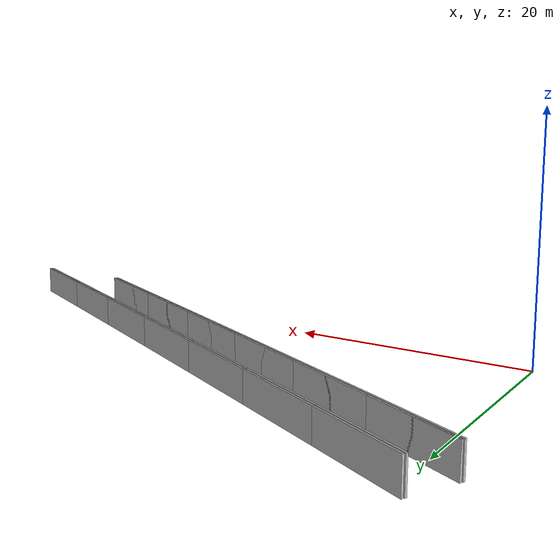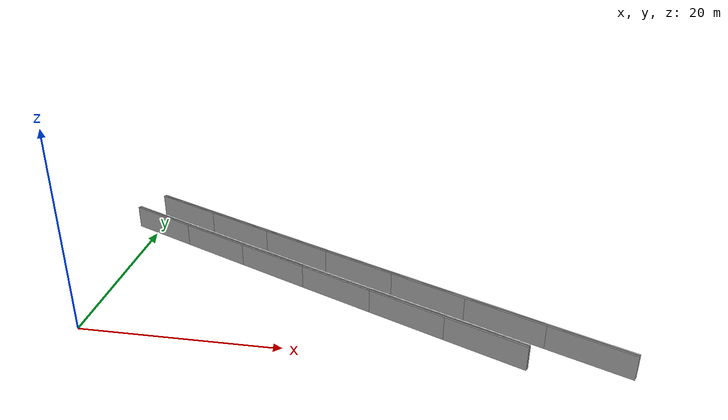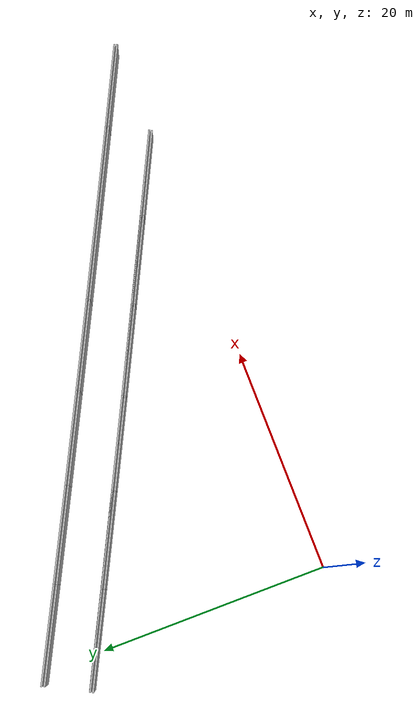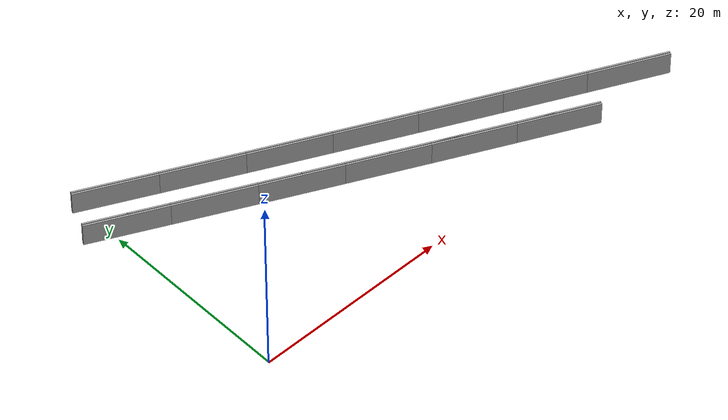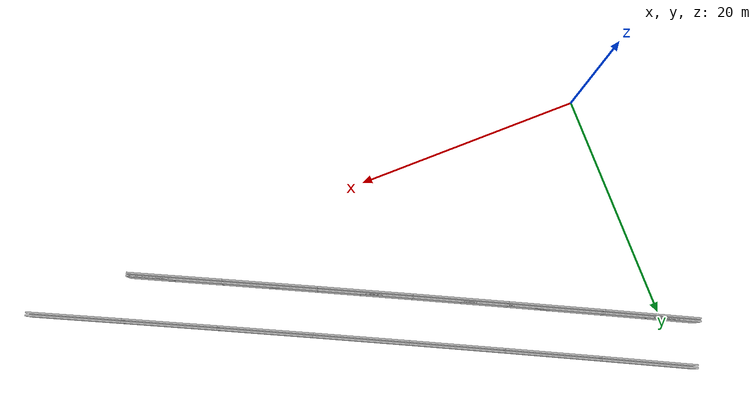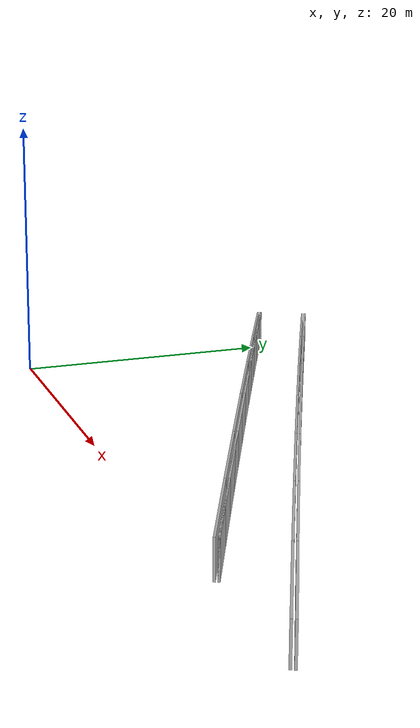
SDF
<?xml version="1.0" ?>
<sdf version="1.6">
  <model name="sps_0211">
    <pose frame="">0 0 0 0 -0 0</pose>
    <static>1</static>
    <self_collide>0</self_collide>
    <allow_auto_disable>0</allow_auto_disable>
    <link name="Wall4298">
      <kinematic>0</kinematic>
      <gravity>1</gravity>
      <self_collide>0</self_collide>
      <collision name="collision">
        <geometry>
          <box>
            <size>8.2516 0.15 2.5</size>
          </box>
        </geometry>
        <pose frame="">0 0 0 0 -0 0</pose>
      </collision>
      <visual name="visual">
        <geometry>
          <box>
            <size>8.2516 0.15 2.5</size>
          </box>
        </geometry>
        <pose frame="">0 0 0 0 -0 0</pose>
        <cast_shadows>1</cast_shadows>
        <transparency>0.0</transparency>
      </visual>
      <pose frame="">2.79708 23.5586 1.25 0 0 -0.453479</pose>
    </link>
    <link name="Wall4299">
      <kinematic>0</kinematic>
      <gravity>1</gravity>
      <self_collide>0</self_collide>
      <collision name="collision">
        <geometry>
          <box>
            <size>8.25152 0.15 2.5</size>
          </box>
        </geometry>
        <pose frame="">0 0 0 0 -0 0</pose>
      </collision>
      <visual name="visual">
        <geometry>
          <box>
            <size>8.25152 0.15 2.5</size>
          </box>
        </geometry>
        <pose frame="">0 0 0 0 -0 0</pose>
        <cast_shadows>1</cast_shadows>
        <transparency>0.0</transparency>
      </visual>
      <pose frame="">10.2189 19.9523 1.25 0 0 -0.45114</pose>
    </link>
    <link name="Wall4300">
      <kinematic>0</kinematic>
      <gravity>1</gravity>
      <self_collide>0</self_collide>
      <collision name="collision">
        <geometry>
          <box>
            <size>8.25185 0.15 2.5</size>
          </box>
        </geometry>
        <pose frame="">0 0 0 0 -0 0</pose>
      </collision>
      <visual name="visual">
        <geometry>
          <box>
            <size>8.25185 0.15 2.5</size>
          </box>
        </geometry>
        <pose frame="">0 0 0 0 -0 0</pose>
        <cast_shadows>1</cast_shadows>
        <transparency>0.0</transparency>
      </visual>
      <pose frame="">17.6493 16.3635 1.25 0 0 -0.448755</pose>
    </link>
    <link name="Wall4301">
      <kinematic>0</kinematic>
      <gravity>1</gravity>
      <self_collide>0</self_collide>
      <collision name="collision">
        <geometry>
          <box>
            <size>8.25142 0.15 2.5</size>
          </box>
        </geometry>
        <pose frame="">0 0 0 0 -0 0</pose>
      </collision>
      <visual name="visual">
        <geometry>
          <box>
            <size>8.25142 0.15 2.5</size>
          </box>
        </geometry>
        <pose frame="">0 0 0 0 -0 0</pose>
        <cast_shadows>1</cast_shadows>
        <transparency>0.0</transparency>
      </visual>
      <pose frame="">25.0881 12.7923 1.25 0 0 -0.446409</pose>
    </link>
    <link name="Wall4302">
      <kinematic>0</kinematic>
      <gravity>1</gravity>
      <self_collide>0</self_collide>
      <collision name="collision">
        <geometry>
          <box>
            <size>8.25148 0.15 2.5</size>
          </box>
        </geometry>
        <pose frame="">0 0 0 0 -0 0</pose>
      </collision>
      <visual name="visual">
        <geometry>
          <box>
            <size>8.25148 0.15 2.5</size>
          </box>
        </geometry>
        <pose frame="">0 0 0 0 -0 0</pose>
        <cast_shadows>1</cast_shadows>
        <transparency>0.0</transparency>
      </visual>
      <pose frame="">32.5351 9.23881 1.25 0 0 -0.44402</pose>
    </link>
    <link name="Wall4303">
      <kinematic>0</kinematic>
      <gravity>1</gravity>
      <self_collide>0</self_collide>
      <collision name="collision">
        <geometry>
          <box>
            <size>8.25194 0.15 2.5</size>
          </box>
        </geometry>
        <pose frame="">0 0 0 0 -0 0</pose>
      </collision>
      <visual name="visual">
        <geometry>
          <box>
            <size>8.25194 0.15 2.5</size>
          </box>
        </geometry>
        <pose frame="">0 0 0 0 -0 0</pose>
        <cast_shadows>1</cast_shadows>
        <transparency>0.0</transparency>
      </visual>
      <pose frame="">39.9908 5.7028 1.25 0 0 -0.441685</pose>
    </link>
    <link name="Wall4304">
      <kinematic>0</kinematic>
      <gravity>1</gravity>
      <self_collide>0</self_collide>
      <collision name="collision">
        <geometry>
          <box>
            <size>8.2515 0.15 2.5</size>
          </box>
        </geometry>
        <pose frame="">0 0 0 0 -0 0</pose>
      </collision>
      <visual name="visual">
        <geometry>
          <box>
            <size>8.2515 0.15 2.5</size>
          </box>
        </geometry>
        <pose frame="">0 0 0 0 -0 0</pose>
        <cast_shadows>1</cast_shadows>
        <transparency>0.0</transparency>
      </visual>
      <pose frame="">47.4549 2.1844 1.25 0 0 -0.439298</pose>
    </link>
    <link name="Wall4339">
      <kinematic>0</kinematic>
      <gravity>1</gravity>
      <self_collide>0</self_collide>
      <collision name="collision">
        <geometry>
          <box>
            <size>8.26125 0.15 2.5</size>
          </box>
        </geometry>
        <pose frame="">0 0 0 0 -0 0</pose>
      </collision>
      <visual name="visual">
        <geometry>
          <box>
            <size>8.26125 0.15 2.5</size>
          </box>
        </geometry>
        <pose frame="">0 0 0 0 -0 0</pose>
        <cast_shadows>1</cast_shadows>
        <transparency>0.0</transparency>
      </visual>
      <pose frame="">38.3491 2.321 1.25 0 -0 2.69991</pose>
    </link>
    <link name="Wall4340">
      <kinematic>0</kinematic>
      <gravity>1</gravity>
      <self_collide>0</self_collide>
      <collision name="collision">
        <geometry>
          <box>
            <size>8.2609 0.15 2.5</size>
          </box>
        </geometry>
        <pose frame="">0 0 0 0 -0 0</pose>
      </collision>
      <visual name="visual">
        <geometry>
          <box>
            <size>8.2609 0.15 2.5</size>
          </box>
        </geometry>
        <pose frame="">0 0 0 0 -0 0</pose>
        <cast_shadows>1</cast_shadows>
        <transparency>0.0</transparency>
      </visual>
      <pose frame="">30.8849 5.8611 1.25 0 -0 2.69755</pose>
    </link>
    <link name="Wall4341">
      <kinematic>0</kinematic>
      <gravity>1</gravity>
      <self_collide>0</self_collide>
      <collision name="collision">
        <geometry>
          <box>
            <size>8.26117 0.15 2.5</size>
          </box>
        </geometry>
        <pose frame="">0 0 0 0 -0 0</pose>
      </collision>
      <visual name="visual">
        <geometry>
          <box>
            <size>8.26117 0.15 2.5</size>
          </box>
        </geometry>
        <pose frame="">0 0 0 0 -0 0</pose>
        <cast_shadows>1</cast_shadows>
        <transparency>0.0</transparency>
      </visual>
      <pose frame="">23.4293 9.41881 1.25 0 -0 2.69518</pose>
    </link>
    <link name="Wall4342">
      <kinematic>0</kinematic>
      <gravity>1</gravity>
      <self_collide>0</self_collide>
      <collision name="collision">
        <geometry>
          <box>
            <size>8.26102 0.15 2.5</size>
          </box>
        </geometry>
        <pose frame="">0 0 0 0 -0 0</pose>
      </collision>
      <visual name="visual">
        <geometry>
          <box>
            <size>8.26102 0.15 2.5</size>
          </box>
        </geometry>
        <pose frame="">0 0 0 0 -0 0</pose>
        <cast_shadows>1</cast_shadows>
        <transparency>0.0</transparency>
      </visual>
      <pose frame="">15.982 12.9942 1.25 0 -0 2.69281</pose>
    </link>
    <link name="Wall4343">
      <kinematic>0</kinematic>
      <gravity>1</gravity>
      <self_collide>0</self_collide>
      <collision name="collision">
        <geometry>
          <box>
            <size>8.26094 0.15 2.5</size>
          </box>
        </geometry>
        <pose frame="">0 0 0 0 -0 0</pose>
      </collision>
      <visual name="visual">
        <geometry>
          <box>
            <size>8.26094 0.15 2.5</size>
          </box>
        </geometry>
        <pose frame="">0 0 0 0 -0 0</pose>
        <cast_shadows>1</cast_shadows>
        <transparency>0.0</transparency>
      </visual>
      <pose frame="">8.54327 16.5872 1.25 0 -0 2.69044</pose>
    </link>
    <link name="Wall4344">
      <kinematic>0</kinematic>
      <gravity>1</gravity>
      <self_collide>0</self_collide>
      <collision name="collision">
        <geometry>
          <box>
            <size>8.26102 0.15 2.5</size>
          </box>
        </geometry>
        <pose frame="">0 0 0 0 -0 0</pose>
      </collision>
      <visual name="visual">
        <geometry>
          <box>
            <size>8.26102 0.15 2.5</size>
          </box>
        </geometry>
        <pose frame="">0 0 0 0 -0 0</pose>
        <cast_shadows>1</cast_shadows>
        <transparency>0.0</transparency>
      </visual>
      <pose frame="">1.11306 20.1977 1.25 0 -0 2.6881</pose>
    </link>
    <link name="Wall18045">
      <kinematic>0</kinematic>
      <gravity>1</gravity>
      <self_collide>0</self_collide>
      <collision name="collision">
        <geometry>
          <box>
            <size>8.25098 0.15 2.5</size>
          </box>
        </geometry>
        <pose frame="">0 0 0 0 -0 0</pose>
      </collision>
      <visual name="visual">
        <geometry>
          <box>
            <size>8.25098 0.15 2.5</size>
          </box>
        </geometry>
        <pose frame="">0 0 0 0 -0 0</pose>
        <cast_shadows>1</cast_shadows>
        <transparency>0.0</transparency>
      </visual>
      <pose frame="">2.90914 23.7821 1.25 0 0 -0.453491</pose>
    </link>
    <link name="Wall18046">
      <kinematic>0</kinematic>
      <gravity>1</gravity>
      <self_collide>0</self_collide>
      <collision name="collision">
        <geometry>
          <box>
            <size>8.25101 0.15 2.5</size>
          </box>
        </geometry>
        <pose frame="">0 0 0 0 -0 0</pose>
      </collision>
      <visual name="visual">
        <geometry>
          <box>
            <size>8.25101 0.15 2.5</size>
          </box>
        </geometry>
        <pose frame="">0 0 0 0 -0 0</pose>
        <cast_shadows>1</cast_shadows>
        <transparency>0.0</transparency>
      </visual>
      <pose frame="">10.3304 20.1761 1.25 0 0 -0.451113</pose>
    </link>
    <link name="Wall18047">
      <kinematic>0</kinematic>
      <gravity>1</gravity>
      <self_collide>0</self_collide>
      <collision name="collision">
        <geometry>
          <box>
            <size>8.25105 0.15 2.5</size>
          </box>
        </geometry>
        <pose frame="">0 0 0 0 -0 0</pose>
      </collision>
      <visual name="visual">
        <geometry>
          <box>
            <size>8.25105 0.15 2.5</size>
          </box>
        </geometry>
        <pose frame="">0 0 0 0 -0 0</pose>
        <cast_shadows>1</cast_shadows>
        <transparency>0.0</transparency>
      </visual>
      <pose frame="">17.7602 16.5876 1.25 0 0 -0.448777</pose>
    </link>
    <link name="Wall18048">
      <kinematic>0</kinematic>
      <gravity>1</gravity>
      <self_collide>0</self_collide>
      <collision name="collision">
        <geometry>
          <box>
            <size>8.25088 0.15 2.5</size>
          </box>
        </geometry>
        <pose frame="">0 0 0 0 -0 0</pose>
      </collision>
      <visual name="visual">
        <geometry>
          <box>
            <size>8.25088 0.15 2.5</size>
          </box>
        </geometry>
        <pose frame="">0 0 0 0 -0 0</pose>
        <cast_shadows>1</cast_shadows>
        <transparency>0.0</transparency>
      </visual>
      <pose frame="">25.1984 13.0167 1.25 0 0 -0.446391</pose>
    </link>
    <link name="Wall18049">
      <kinematic>0</kinematic>
      <gravity>1</gravity>
      <self_collide>0</self_collide>
      <collision name="collision">
        <geometry>
          <box>
            <size>8.25088 0.15 2.5</size>
          </box>
        </geometry>
        <pose frame="">0 0 0 0 -0 0</pose>
      </collision>
      <visual name="visual">
        <geometry>
          <box>
            <size>8.25088 0.15 2.5</size>
          </box>
        </geometry>
        <pose frame="">0 0 0 0 -0 0</pose>
        <cast_shadows>1</cast_shadows>
        <transparency>0.0</transparency>
      </visual>
      <pose frame="">32.645 9.46348 1.25 0 0 -0.444022</pose>
    </link>
    <link name="Wall18050">
      <kinematic>0</kinematic>
      <gravity>1</gravity>
      <self_collide>0</self_collide>
      <collision name="collision">
        <geometry>
          <box>
            <size>8.25104 0.15 2.5</size>
          </box>
        </geometry>
        <pose frame="">0 0 0 0 -0 0</pose>
      </collision>
      <visual name="visual">
        <geometry>
          <box>
            <size>8.25104 0.15 2.5</size>
          </box>
        </geometry>
        <pose frame="">0 0 0 0 -0 0</pose>
        <cast_shadows>1</cast_shadows>
        <transparency>0.0</transparency>
      </visual>
      <pose frame="">40.1001 5.92781 1.25 0 0 -0.44168</pose>
    </link>
    <link name="Wall18051">
      <kinematic>0</kinematic>
      <gravity>1</gravity>
      <self_collide>0</self_collide>
      <collision name="collision">
        <geometry>
          <box>
            <size>8.25111 0.15 2.5</size>
          </box>
        </geometry>
        <pose frame="">0 0 0 0 -0 0</pose>
      </collision>
      <visual name="visual">
        <geometry>
          <box>
            <size>8.25111 0.15 2.5</size>
          </box>
        </geometry>
        <pose frame="">0 0 0 0 -0 0</pose>
        <cast_shadows>1</cast_shadows>
        <transparency>0.0</transparency>
      </visual>
      <pose frame="">47.5635 2.40962 1.25 0 0 -0.439321</pose>
    </link>
    <link name="Wall37633">
      <kinematic>0</kinematic>
      <gravity>1</gravity>
      <self_collide>0</self_collide>
      <collision name="collision">
        <geometry>
          <box>
            <size>8.2516 0.15 2.5</size>
          </box>
        </geometry>
        <pose frame="">0 0 0 0 -0 0</pose>
      </collision>
      <visual name="visual">
        <geometry>
          <box>
            <size>8.2516 0.15 2.5</size>
          </box>
        </geometry>
        <pose frame="">0 0 0 0 -0 0</pose>
        <cast_shadows>1</cast_shadows>
        <transparency>0.0</transparency>
      </visual>
      <pose frame="">2.79708 23.5586 1.25 0 0 -0.453479</pose>
    </link>
    <link name="Wall37634">
      <kinematic>0</kinematic>
      <gravity>1</gravity>
      <self_collide>0</self_collide>
      <collision name="collision">
        <geometry>
          <box>
            <size>8.25152 0.15 2.5</size>
          </box>
        </geometry>
        <pose frame="">0 0 0 0 -0 0</pose>
      </collision>
      <visual name="visual">
        <geometry>
          <box>
            <size>8.25152 0.15 2.5</size>
          </box>
        </geometry>
        <pose frame="">0 0 0 0 -0 0</pose>
        <cast_shadows>1</cast_shadows>
        <transparency>0.0</transparency>
      </visual>
      <pose frame="">10.2189 19.9523 1.25 0 0 -0.45114</pose>
    </link>
    <link name="Wall37635">
      <kinematic>0</kinematic>
      <gravity>1</gravity>
      <self_collide>0</self_collide>
      <collision name="collision">
        <geometry>
          <box>
            <size>8.25185 0.15 2.5</size>
          </box>
        </geometry>
        <pose frame="">0 0 0 0 -0 0</pose>
      </collision>
      <visual name="visual">
        <geometry>
          <box>
            <size>8.25185 0.15 2.5</size>
          </box>
        </geometry>
        <pose frame="">0 0 0 0 -0 0</pose>
        <cast_shadows>1</cast_shadows>
        <transparency>0.0</transparency>
      </visual>
      <pose frame="">17.6493 16.3635 1.25 0 0 -0.448755</pose>
    </link>
    <link name="Wall37636">
      <kinematic>0</kinematic>
      <gravity>1</gravity>
      <self_collide>0</self_collide>
      <collision name="collision">
        <geometry>
          <box>
            <size>8.25142 0.15 2.5</size>
          </box>
        </geometry>
        <pose frame="">0 0 0 0 -0 0</pose>
      </collision>
      <visual name="visual">
        <geometry>
          <box>
            <size>8.25142 0.15 2.5</size>
          </box>
        </geometry>
        <pose frame="">0 0 0 0 -0 0</pose>
        <cast_shadows>1</cast_shadows>
        <transparency>0.0</transparency>
      </visual>
      <pose frame="">25.0881 12.7923 1.25 0 0 -0.446409</pose>
    </link>
    <link name="Wall37637">
      <kinematic>0</kinematic>
      <gravity>1</gravity>
      <self_collide>0</self_collide>
      <collision name="collision">
        <geometry>
          <box>
            <size>8.25148 0.15 2.5</size>
          </box>
        </geometry>
        <pose frame="">0 0 0 0 -0 0</pose>
      </collision>
      <visual name="visual">
        <geometry>
          <box>
            <size>8.25148 0.15 2.5</size>
          </box>
        </geometry>
        <pose frame="">0 0 0 0 -0 0</pose>
        <cast_shadows>1</cast_shadows>
        <transparency>0.0</transparency>
      </visual>
      <pose frame="">32.5351 9.23881 1.25 0 0 -0.44402</pose>
    </link>
    <link name="Wall37638">
      <kinematic>0</kinematic>
      <gravity>1</gravity>
      <self_collide>0</self_collide>
      <collision name="collision">
        <geometry>
          <box>
            <size>8.25194 0.15 2.5</size>
          </box>
        </geometry>
        <pose frame="">0 0 0 0 -0 0</pose>
      </collision>
      <visual name="visual">
        <geometry>
          <box>
            <size>8.25194 0.15 2.5</size>
          </box>
        </geometry>
        <pose frame="">0 0 0 0 -0 0</pose>
        <cast_shadows>1</cast_shadows>
        <transparency>0.0</transparency>
      </visual>
      <pose frame="">39.9908 5.7028 1.25 0 0 -0.441685</pose>
    </link>
    <link name="Wall37639">
      <kinematic>0</kinematic>
      <gravity>1</gravity>
      <self_collide>0</self_collide>
      <collision name="collision">
        <geometry>
          <box>
            <size>8.2515 0.15 2.5</size>
          </box>
        </geometry>
        <pose frame="">0 0 0 0 -0 0</pose>
      </collision>
      <visual name="visual">
        <geometry>
          <box>
            <size>8.2515 0.15 2.5</size>
          </box>
        </geometry>
        <pose frame="">0 0 0 0 -0 0</pose>
        <cast_shadows>1</cast_shadows>
        <transparency>0.0</transparency>
      </visual>
      <pose frame="">47.4549 2.1844 1.25 0 0 -0.439298</pose>
    </link>
    <link name="Wall37853">
      <kinematic>0</kinematic>
      <gravity>1</gravity>
      <self_collide>0</self_collide>
      <collision name="collision">
        <geometry>
          <box>
            <size>8.26151 0.15 2.5</size>
          </box>
        </geometry>
        <pose frame="">0 0 0 0 -0 0</pose>
      </collision>
      <visual name="visual">
        <geometry>
          <box>
            <size>8.26151 0.15 2.5</size>
          </box>
        </geometry>
        <pose frame="">0 0 0 0 -0 0</pose>
        <cast_shadows>1</cast_shadows>
        <transparency>0.0</transparency>
      </visual>
      <pose frame="">1.00106 19.9743 1.25 0 0 -0.453511</pose>
    </link>
    <link name="Wall37854">
      <kinematic>0</kinematic>
      <gravity>1</gravity>
      <self_collide>0</self_collide>
      <collision name="collision">
        <geometry>
          <box>
            <size>8.26173 0.15 2.5</size>
          </box>
        </geometry>
        <pose frame="">0 0 0 0 -0 0</pose>
      </collision>
      <visual name="visual">
        <geometry>
          <box>
            <size>8.26173 0.15 2.5</size>
          </box>
        </geometry>
        <pose frame="">0 0 0 0 -0 0</pose>
        <cast_shadows>1</cast_shadows>
        <transparency>0.0</transparency>
      </visual>
      <pose frame="">8.43185 16.3635 1.25 0 0 -0.451132</pose>
    </link>
    <link name="Wall37855">
      <kinematic>0</kinematic>
      <gravity>1</gravity>
      <self_collide>0</self_collide>
      <collision name="collision">
        <geometry>
          <box>
            <size>8.26175 0.15 2.5</size>
          </box>
        </geometry>
        <pose frame="">0 0 0 0 -0 0</pose>
      </collision>
      <visual name="visual">
        <geometry>
          <box>
            <size>8.26175 0.15 2.5</size>
          </box>
        </geometry>
        <pose frame="">0 0 0 0 -0 0</pose>
        <cast_shadows>1</cast_shadows>
        <transparency>0.0</transparency>
      </visual>
      <pose frame="">15.8712 12.7702 1.25 0 0 -0.448793</pose>
    </link>
    <link name="Wall37856">
      <kinematic>0</kinematic>
      <gravity>1</gravity>
      <self_collide>0</self_collide>
      <collision name="collision">
        <geometry>
          <box>
            <size>8.26166 0.15 2.5</size>
          </box>
        </geometry>
        <pose frame="">0 0 0 0 -0 0</pose>
      </collision>
      <visual name="visual">
        <geometry>
          <box>
            <size>8.26166 0.15 2.5</size>
          </box>
        </geometry>
        <pose frame="">0 0 0 0 -0 0</pose>
        <cast_shadows>1</cast_shadows>
        <transparency>0.0</transparency>
      </visual>
      <pose frame="">23.3191 9.1945 1.25 0 0 -0.446414</pose>
    </link>
    <link name="Wall37857">
      <kinematic>0</kinematic>
      <gravity>1</gravity>
      <self_collide>0</self_collide>
      <collision name="collision">
        <geometry>
          <box>
            <size>8.26161 0.15 2.5</size>
          </box>
        </geometry>
        <pose frame="">0 0 0 0 -0 0</pose>
      </collision>
      <visual name="visual">
        <geometry>
          <box>
            <size>8.26161 0.15 2.5</size>
          </box>
        </geometry>
        <pose frame="">0 0 0 0 -0 0</pose>
        <cast_shadows>1</cast_shadows>
        <transparency>0.0</transparency>
      </visual>
      <pose frame="">30.7753 5.63649 1.25 0 0 -0.444051</pose>
    </link>
    <link name="Wall37858">
      <kinematic>0</kinematic>
      <gravity>1</gravity>
      <self_collide>0</self_collide>
      <collision name="collision">
        <geometry>
          <box>
            <size>8.26169 0.15 2.5</size>
          </box>
        </geometry>
        <pose frame="">0 0 0 0 -0 0</pose>
      </collision>
      <visual name="visual">
        <geometry>
          <box>
            <size>8.26169 0.15 2.5</size>
          </box>
        </geometry>
        <pose frame="">0 0 0 0 -0 0</pose>
        <cast_shadows>1</cast_shadows>
        <transparency>0.0</transparency>
      </visual>
      <pose frame="">38.2399 2.09608 1.25 0 0 -0.441691</pose>
    </link>
    <link name="Wall37936">
      <kinematic>0</kinematic>
      <gravity>1</gravity>
      <self_collide>0</self_collide>
      <collision name="collision">
        <geometry>
          <box>
            <size>8.26102 0.15 2.5</size>
          </box>
        </geometry>
        <pose frame="">0 0 0 0 -0 0</pose>
      </collision>
      <visual name="visual">
        <geometry>
          <box>
            <size>8.26102 0.15 2.5</size>
          </box>
        </geometry>
        <pose frame="">0 0 0 0 -0 0</pose>
        <cast_shadows>1</cast_shadows>
        <transparency>0.0</transparency>
      </visual>
      <pose frame="">1.11306 20.1977 1.25 0 0 -0.45349</pose>
    </link>
    <link name="Wall37937">
      <kinematic>0</kinematic>
      <gravity>1</gravity>
      <self_collide>0</self_collide>
      <collision name="collision">
        <geometry>
          <box>
            <size>8.26094 0.15 2.5</size>
          </box>
        </geometry>
        <pose frame="">0 0 0 0 -0 0</pose>
      </collision>
      <visual name="visual">
        <geometry>
          <box>
            <size>8.26094 0.15 2.5</size>
          </box>
        </geometry>
        <pose frame="">0 0 0 0 -0 0</pose>
        <cast_shadows>1</cast_shadows>
        <transparency>0.0</transparency>
      </visual>
      <pose frame="">8.54327 16.5872 1.25 0 0 -0.451154</pose>
    </link>
    <link name="Wall37938">
      <kinematic>0</kinematic>
      <gravity>1</gravity>
      <self_collide>0</self_collide>
      <collision name="collision">
        <geometry>
          <box>
            <size>8.26102 0.15 2.5</size>
          </box>
        </geometry>
        <pose frame="">0 0 0 0 -0 0</pose>
      </collision>
      <visual name="visual">
        <geometry>
          <box>
            <size>8.26102 0.15 2.5</size>
          </box>
        </geometry>
        <pose frame="">0 0 0 0 -0 0</pose>
        <cast_shadows>1</cast_shadows>
        <transparency>0.0</transparency>
      </visual>
      <pose frame="">15.982 12.9942 1.25 0 0 -0.448778</pose>
    </link>
    <link name="Wall37939">
      <kinematic>0</kinematic>
      <gravity>1</gravity>
      <self_collide>0</self_collide>
      <collision name="collision">
        <geometry>
          <box>
            <size>8.26117 0.15 2.5</size>
          </box>
        </geometry>
        <pose frame="">0 0 0 0 -0 0</pose>
      </collision>
      <visual name="visual">
        <geometry>
          <box>
            <size>8.26117 0.15 2.5</size>
          </box>
        </geometry>
        <pose frame="">0 0 0 0 -0 0</pose>
        <cast_shadows>1</cast_shadows>
        <transparency>0.0</transparency>
      </visual>
      <pose frame="">23.4293 9.41881 1.25 0 0 -0.446409</pose>
    </link>
    <link name="Wall37940">
      <kinematic>0</kinematic>
      <gravity>1</gravity>
      <self_collide>0</self_collide>
      <collision name="collision">
        <geometry>
          <box>
            <size>8.2609 0.15 2.5</size>
          </box>
        </geometry>
        <pose frame="">0 0 0 0 -0 0</pose>
      </collision>
      <visual name="visual">
        <geometry>
          <box>
            <size>8.2609 0.15 2.5</size>
          </box>
        </geometry>
        <pose frame="">0 0 0 0 -0 0</pose>
        <cast_shadows>1</cast_shadows>
        <transparency>0.0</transparency>
      </visual>
      <pose frame="">30.8849 5.8611 1.25 0 0 -0.444042</pose>
    </link>
    <link name="Wall37941">
      <kinematic>0</kinematic>
      <gravity>1</gravity>
      <self_collide>0</self_collide>
      <collision name="collision">
        <geometry>
          <box>
            <size>8.26125 0.15 2.5</size>
          </box>
        </geometry>
        <pose frame="">0 0 0 0 -0 0</pose>
      </collision>
      <visual name="visual">
        <geometry>
          <box>
            <size>8.26125 0.15 2.5</size>
          </box>
        </geometry>
        <pose frame="">0 0 0 0 -0 0</pose>
        <cast_shadows>1</cast_shadows>
        <transparency>0.0</transparency>
      </visual>
      <pose frame="">38.3491 2.321 1.25 0 0 -0.441684</pose>
    </link>
  </model>
</sdf>
